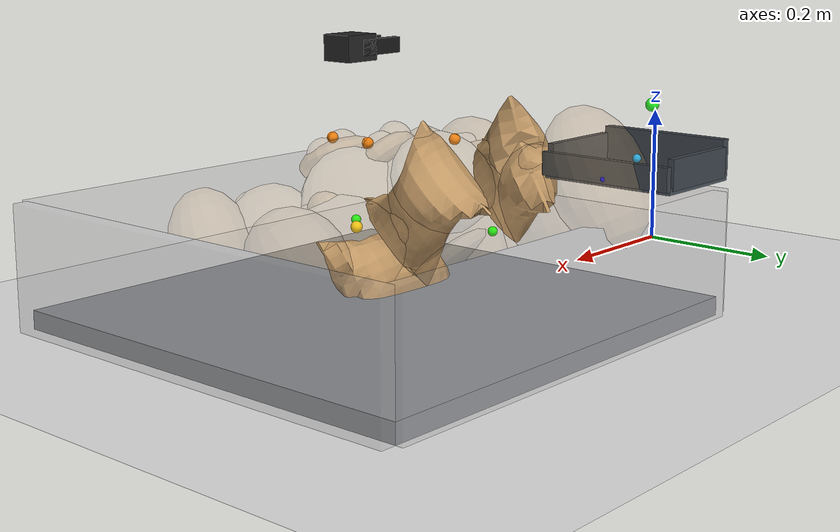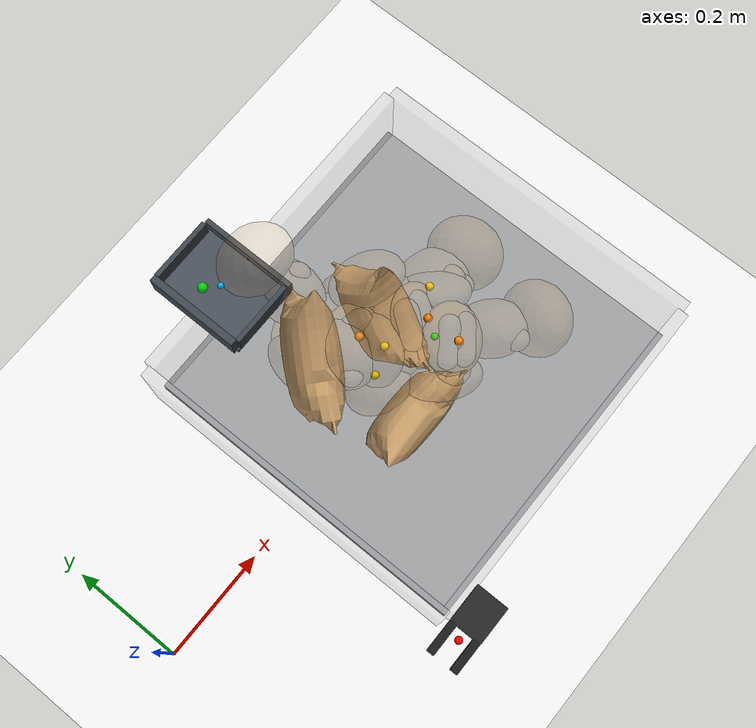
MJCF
<mujoco model="neighbor_contact_wedge_seed10">
  <compiler angle="radian" coordinate="local" inertiafromgeom="true" meshdir="D:/Michael/2025/01.Research/01.Parceldetection/16.Pybullet/bullet3-master (1)/bullet3-master/examples/pybullet/examples/DeformableTest/Sackcodex2/object"/>
  <option timestep="0.002" gravity="0 0 -9.81" integrator="implicitfast" iterations="100" tolerance="1e-8"/>
  <size memory="768M" nconmax="12000"/>

  <visual>
    <global azimuth="128" elevation="-20" offwidth="1280" offheight="720"/>
    <headlight ambient="0.34 0.34 0.34" diffuse="0.78 0.78 0.78" specular="0.15 0.15 0.15"/>
    <rgba haze="0.11 0.13 0.18 1"/>
  </visual>

  <default>
    <geom condim="4" friction="1.15 0.03 0.01" margin="0.003" solimp="0.93 0.98 0.003" solref="0.012 1"/>
    <joint damping="1.2" armature="0.002"/>
    <position kp="2500" forcelimited="true" forcerange="-420 420"/>
    <motor ctrllimited="true"/>
  </default>

  <asset>
    <mesh name="sack_0_visual_mesh" file="sack6Apply.obj" scale="0.0706 0.0706 0.0726"/>
    <mesh name="sack_1_visual_mesh" file="sack3.obj" scale="0.0718 0.0718 0.0754"/>
    <mesh name="sack_2_visual_mesh" file="sack3.obj" scale="0.0770 0.0770 0.0807"/>
  </asset>

  <worldbody>
    <light name="key" pos="0.85 0.15 1.8" dir="-0.2 -0.1 -1" directional="true"/>
    <geom name="floor" type="plane" size="2 2 0.1" rgba="0.93 0.93 0.93 1"/>
    <geom name="work_pad" type="box" pos="0.62 0 0.012" size="0.30 0.30 0.012" rgba="0.60 0.61 0.62 1" friction="1.4 0.05 0.01"/>
    <geom name="corral_front" type="box" pos="0.93 0.00 0.08" size="0.010 0.30 0.08" rgba="0.55 0.55 0.58 0.22" friction="1.0 0.03 0.01"/>
    <geom name="corral_back" type="box" pos="0.31 0.00 0.08" size="0.010 0.30 0.08" rgba="0.55 0.55 0.58 0.18" friction="1.0 0.03 0.01"/>
    <geom name="corral_left" type="box" pos="0.62 0.30 0.08" size="0.30 0.010 0.08" rgba="0.55 0.55 0.58 0.14" friction="1.0 0.03 0.01"/>
    <geom name="corral_right" type="box" pos="0.62 -0.30 0.08" size="0.30 0.010 0.08" rgba="0.55 0.55 0.58 0.14" friction="1.0 0.03 0.01"/>
    <camera name="overview" pos="1.22 0.00 0.92" xyaxes="0 1 0 -0.46 0 0.88"/>

    <body name="gripper_mocap" mocap="true" pos="0.36 -0.33 0.30" quat="0.707107 0 -0.707107 0"/>
    <body name="scoop_mocap" mocap="true" pos="0.42 0.28 0.20" quat="1 0 0 0"/>

    <body name="gripper_ctrl_base" pos="0.36 -0.33 0.30">
      <inertial pos="0 0 0" mass="0.001" diaginertia="1e-6 1e-6 1e-6"/>
      <joint name="gripper_ctrl_x" type="slide" axis="1 0 0" limited="true" range="0.20 1.00"/>
      <body name="gripper_ctrl_y_body">
        <inertial pos="0 0 0" mass="0.001" diaginertia="1e-6 1e-6 1e-6"/>
        <joint name="gripper_ctrl_y" type="slide" axis="0 1 0" limited="true" range="-0.60 0.60"/>
        <body name="gripper_ctrl_z_body">
          <inertial pos="0 0 0" mass="0.001" diaginertia="1e-6 1e-6 1e-6"/>
          <joint name="gripper_ctrl_z" type="slide" axis="0 0 1" limited="true" range="0.04 0.70"/>
          <body name="gripper_ctrl_yaw_body">
            <inertial pos="0 0 0" mass="0.001" diaginertia="1e-6 1e-6 1e-6"/>
            <joint name="gripper_ctrl_yaw" type="hinge" axis="0 0 1" limited="true" range="-3.1416 3.1416"/>
            <body name="gripper_ctrl_pitch_body">
              <inertial pos="0 0 0" mass="0.001" diaginertia="1e-6 1e-6 1e-6"/>
              <joint name="gripper_ctrl_pitch" type="hinge" axis="0 1 0" limited="true" range="-3.1416 3.1416"/>
              <body name="gripper_ctrl_roll_body">
                <inertial pos="0 0 0" mass="0.001" diaginertia="1e-6 1e-6 1e-6"/>
                <joint name="gripper_ctrl_roll" type="hinge" axis="1 0 0" limited="true" range="-3.1416 3.1416"/>
              </body>
            </body>
          </body>
        </body>
      </body>
    </body>

    <body name="scoop_ctrl_base" pos="0.42 0.28 0.20">
      <inertial pos="0 0 0" mass="0.001" diaginertia="1e-6 1e-6 1e-6"/>
      <joint name="scoop_ctrl_x" type="slide" axis="1 0 0" limited="true" range="0.20 1.00"/>
      <body name="scoop_ctrl_y_body">
        <inertial pos="0 0 0" mass="0.001" diaginertia="1e-6 1e-6 1e-6"/>
        <joint name="scoop_ctrl_y" type="slide" axis="0 1 0" limited="true" range="-0.60 0.60"/>
        <body name="scoop_ctrl_z_body">
          <inertial pos="0 0 0" mass="0.001" diaginertia="1e-6 1e-6 1e-6"/>
          <joint name="scoop_ctrl_z" type="slide" axis="0 0 1" limited="true" range="0.04 0.70"/>
          <body name="scoop_ctrl_yaw_body">
            <inertial pos="0 0 0" mass="0.001" diaginertia="1e-6 1e-6 1e-6"/>
            <joint name="scoop_ctrl_yaw" type="hinge" axis="0 0 1" limited="true" range="-3.1416 3.1416"/>
            <body name="scoop_ctrl_pitch_body">
              <inertial pos="0 0 0" mass="0.001" diaginertia="1e-6 1e-6 1e-6"/>
              <joint name="scoop_ctrl_pitch" type="hinge" axis="0 1 0" limited="true" range="-3.1416 3.1416"/>
              <body name="scoop_ctrl_roll_body">
                <inertial pos="0 0 0" mass="0.001" diaginertia="1e-6 1e-6 1e-6"/>
                <joint name="scoop_ctrl_roll" type="hinge" axis="1 0 0" limited="true" range="-3.1416 3.1416"/>
              </body>
            </body>
          </body>
        </body>
      </body>
    </body>

    <body name="gripper_tool" pos="0.36 -0.33 0.30" quat="0.707107 0 -0.707107 0">
      <freejoint name="gripper_tool_free"/>
      <inertial pos="0 0 0.04" mass="0.08" diaginertia="0.0002 0.0002 0.0002"/>
      <geom name="gripper_palm" type="box" pos="0 0 0.030" size="0.020 0.026 0.030" rgba="0.14 0.14 0.14 1"/>
      <body name="left_finger_body" pos="0 0 0.072">
        <joint name="left_finger_slide" type="slide" axis="0 1 0" limited="true" range="0.010 0.040" damping="12"/>
        <geom name="left_finger_geom" type="box" pos="0 0.020 0" size="0.012 0.006 0.040" rgba="0.10 0.10 0.10 1" friction="2.2 0.05 0.01"/>
      </body>
      <body name="right_finger_body" pos="0 0 0.072">
        <joint name="right_finger_slide" type="slide" axis="0 -1 0" limited="true" range="0.010 0.040" damping="12"/>
        <geom name="right_finger_geom" type="box" pos="0 -0.020 0" size="0.012 0.006 0.040" rgba="0.10 0.10 0.10 1" friction="2.2 0.05 0.01"/>
      </body>
      <site name="gripper_pinch_site" pos="0 0 0.074" size="0.006" rgba="1 0 0 1"/>
    </body>

    <body name="scoop_tool" pos="0.42 0.28 0.20" quat="1 0 0 0">
      <freejoint name="scoop_tool_free"/>
      <inertial pos="0 0 0.02" mass="0.10" diaginertia="0.0003 0.0003 0.0003"/>
      <geom name="scoop_plate" type="box" pos="0.062 0 0" size="0.062 0.085 0.004" rgba="0.28 0.31 0.35 1" friction="1.7 0.05 0.01"/>
      <geom name="scoop_lip" type="box" pos="0.126 0 0.014" size="0.004 0.085 0.014" rgba="0.24 0.27 0.30 1" friction="1.7 0.05 0.01"/>
      <geom name="scoop_left_rail" type="box" pos="0.062 0.082 0.018" size="0.056 0.004 0.018" rgba="0.24 0.27 0.30 1"/>
      <geom name="scoop_right_rail" type="box" pos="0.062 -0.082 0.018" size="0.056 0.004 0.018" rgba="0.24 0.27 0.30 1"/>
      <geom name="scoop_backstop" type="box" pos="0.000 0 0.022" size="0.006 0.082 0.022" rgba="0.24 0.27 0.30 1"/>
      <site name="scoop_tip_site" pos="0.126 0 0.005" size="0.005" rgba="0 0 1 1"/>
      <site name="scoop_center_site" pos="0.060 0 0.020" size="0.005" rgba="0 0.7 1 1"/>
      <site name="score_overlay_site" pos="0.030 0 0.080" size="0.008" rgba="0 1 0 0.8"/>
    </body>

    <body name="sack_0" pos="0.6150 0.0685 0.1554" euler="0.7273 0.1212 -1.8466">
      <freejoint name="sack_0_free"/>

      <geom name="sack_0_visual" type="mesh" mesh="sack_0_visual_mesh" rgba="0.760 0.600 0.400 0.92" contype="0" conaffinity="0"/>
      <site name="sack_0_center_site" pos="0 0 0.000" size="0.006" rgba="0 1 0 1"/>
      <site name="sack_0_top_site" pos="0.0014 0.0116 0.1029" size="0.007" rgba="1 0.5 0 1"/>
      <site name="sack_0_side_site" pos="0.0036 0.0926 0.018" size="0.007" rgba="1 0.8 0 1"/>

      <geom name="sack_0_core_geom" type="ellipsoid" pos="0 0 0.0058" size="0.0431 0.0340 0.0741" mass="0.9544" rgba="0.760 0.600 0.400 0.12" friction="1.0 0.03 0.01"/>
      <geom name="sack_0_core_front" type="capsule" fromto="-0.0204 0 -0.0180 0.0536 0 0.0580" size="0.0286" mass="0.2272" rgba="0.760 0.600 0.400 0.10"/>
      <geom name="sack_0_core_left" type="capsule" fromto="-0.016 0.0645 -0.012 0.020 0.1243 0.054" size="0.0209" mass="0.4090" rgba="0.760 0.600 0.400 0.10"/>
      <geom name="sack_0_core_right" type="capsule" fromto="-0.016 -0.0645 -0.012 0.020 -0.1243 0.054" size="0.0187" mass="0.4090" rgba="0.760 0.600 0.400 0.10"/>

      <!-- 자루의 외형은 둥근 shell lobe로 보이게 하고, contact proxy는 반투명하게 숨긴다. -->
      <geom name="sack_0_shell_main_visual" type="ellipsoid" pos="0.0018 0.0093 -0.0038" size="0.0713 0.0634 0.0784" rgba="0.760 0.600 0.400 0.16" contype="0" conaffinity="0"/>
      <geom name="sack_0_shell_left_visual" type="ellipsoid" pos="0.0040 0.1128 0.0020" size="0.0485 0.0671 0.0643" rgba="0.760 0.600 0.400 0.14" contype="0" conaffinity="0"/>
      <geom name="sack_0_shell_right_visual" type="ellipsoid" pos="0.0040 -0.0280 0.0000" size="0.0456 0.0372 0.0627" rgba="0.760 0.600 0.400 0.12" contype="0" conaffinity="0"/>
      <geom name="sack_0_top_left_crown_visual" type="capsule" fromto="-0.0226 0.0161 0.0823 0.0226 0.0080 0.0863" size="0.0207" rgba="0.760 0.600 0.400 0.14" contype="0" conaffinity="0"/>
      <geom name="sack_0_top_right_crown_visual" type="capsule" fromto="-0.0226 -0.0080 0.0863 0.0226 -0.0161 0.0823" size="0.0207" rgba="0.760 0.600 0.400 0.14" contype="0" conaffinity="0"/>

      <body name="sack_0_bottom_support_proxy_body" pos="0.0006 0.0126 -0.0756">
        <joint name="sack_0_bottom_x" type="slide" axis="1 0 0" limited="true" range="-0.012 0.012" damping="18" stiffness="447.8"/>
        <joint name="sack_0_bottom_y" type="slide" axis="0 1 0" limited="true" range="-0.012 0.012" damping="18" stiffness="447.8"/>
        <joint name="sack_0_bottom_z" type="slide" axis="0 0 1" limited="true" range="-0.008 0.020" damping="24" stiffness="551.7"/>
        <geom name="sack_0_bottom_support_proxy" type="ellipsoid" size="0.0723 0.0647 0.0144" mass="0.1818" rgba="0.760 0.600 0.400 0.10" friction="1.55 0.05 0.01"/>
        <geom name="sack_0_bottom_deform_visual" type="ellipsoid" size="0.0770 0.0707 0.0187" rgba="0.760 0.600 0.400 0.22" contype="0" conaffinity="0"/>
      </body>

      <body name="sack_0_top_grasp_proxy_body" pos="0.0036 0.0125 0.0749">
        <joint name="sack_0_top_x" type="slide" axis="1 0 0" limited="true" range="-0.018 0.018" damping="12" stiffness="171.9"/>
        <joint name="sack_0_top_y" type="slide" axis="0 1 0" limited="true" range="-0.018 0.018" damping="12" stiffness="171.9"/>
        <joint name="sack_0_top_z" type="slide" axis="0 0 1" limited="true" range="-0.040 0.010" damping="14" stiffness="125.9"/>
        <geom name="sack_0_top_grasp_proxy" type="ellipsoid" size="0.0566 0.0447 0.0158" mass="0.1363" rgba="0.760 0.600 0.400 0.10" friction="2.2 0.05 0.01"/>
        <geom name="sack_0_top_deform_visual" type="ellipsoid" size="0.0589 0.0482 0.0206" rgba="0.760 0.600 0.400 0.36" contype="0" conaffinity="0"/>
        <geom name="sack_0_top_fold_left_visual" type="capsule" fromto="-0.0272 0.0125 0.000 0.0057 0.0036 0.0125" size="0.0149" rgba="0.760 0.600 0.400 0.26" contype="0" conaffinity="0"/>
        <geom name="sack_0_top_fold_right_visual" type="capsule" fromto="-0.0068 -0.0036 0.0125 0.0272 -0.0125 0.000" size="0.0149" rgba="0.760 0.600 0.400 0.26" contype="0" conaffinity="0"/>
      </body>

      <body name="sack_0_left_side_proxy_body" pos="0.0006 0.1875 0.010">
        <joint name="sack_0_left_side_slide" type="slide" axis="0 -1 0" limited="true" range="-0.028 0.016" damping="16" stiffness="221.3"/>
        <geom name="sack_0_left_side_proxy" type="ellipsoid" size="0.0626 0.0538 0.0676" mass="0.1363" rgba="0.760 0.600 0.400 0.08" friction="1.25 0.04 0.01"/>
        <geom name="sack_0_left_side_deform_visual" type="ellipsoid" size="0.0645 0.0581 0.0689" rgba="0.760 0.600 0.400 0.24" contype="0" conaffinity="0"/>
      </body>

      <body name="sack_0_right_side_proxy_body" pos="0.0006 -0.1027 0.010">
        <joint name="sack_0_right_side_slide" type="slide" axis="0 1 0" limited="true" range="-0.028 0.016" damping="16" stiffness="205.3"/>
        <geom name="sack_0_right_side_proxy" type="ellipsoid" size="0.0601 0.0420 0.0662" mass="0.1363" rgba="0.760 0.600 0.400 0.08" friction="1.25 0.04 0.01"/>
        <geom name="sack_0_right_side_deform_visual" type="ellipsoid" size="0.0620 0.0463 0.0676" rgba="0.760 0.600 0.400 0.24" contype="0" conaffinity="0"/>
      </body>

      <body name="sack_0_front_proxy_body" pos="0.0702 0.0030 0.000">
        <joint name="sack_0_front_slide" type="slide" axis="-1 0 0" limited="true" range="-0.022 0.012" damping="15" stiffness="213.9"/>
        <geom name="sack_0_front_support_proxy" type="ellipsoid" size="0.0419 0.0627 0.0636" mass="0.1136" rgba="0.760 0.600 0.400 0.08" friction="1.20 0.04 0.01"/>
        <geom name="sack_0_front_deform_visual" type="ellipsoid" size="0.0427 0.0639 0.0648" rgba="0.760 0.600 0.400 0.20" contype="0" conaffinity="0"/>
      </body>

      <body name="sack_0_back_proxy_body" pos="-0.0652 0.0030 0.000">
        <joint name="sack_0_back_slide" type="slide" axis="1 0 0" limited="true" range="-0.022 0.012" damping="15" stiffness="197.9"/>
        <geom name="sack_0_back_support_proxy" type="ellipsoid" size="0.0385 0.0627 0.0636" mass="0.1136" rgba="0.760 0.600 0.400 0.08" friction="1.20 0.04 0.01"/>
        <geom name="sack_0_back_deform_visual" type="ellipsoid" size="0.0402 0.0639 0.0648" rgba="0.760 0.600 0.400 0.20" contype="0" conaffinity="0"/>
      </body>

      <body name="sack_0_shape_proxy_body" pos="0.0022 0.1143 0.0389">
        <joint name="sack_0_bulge_y" type="slide" axis="0 1 0" limited="true" range="-0.020 0.020" damping="8" stiffness="108.1"/>
        <joint name="sack_0_bulge_z" type="slide" axis="0 0 1" limited="true" range="-0.014 0.028" damping="8" stiffness="106.1"/>
        <geom name="sack_0_shape_proxy" type="ellipsoid" size="0.0251 0.0222 0.0318" mass="0.0909" rgba="0.760 0.600 0.400 0.10"/>
        <geom name="sack_0_shape_deform_visual" type="ellipsoid" size="0.0294 0.0266 0.0366" rgba="0.760 0.600 0.400 0.32" contype="0" conaffinity="0"/>
      </body>
    </body>

    <body name="sack_1" pos="0.5434 0.1164 0.1197" euler="0.4513 0.0474 -0.0213">
      <freejoint name="sack_1_free"/>

      <geom name="sack_1_visual" type="mesh" mesh="sack_1_visual_mesh" rgba="0.760 0.600 0.400 0.92" contype="0" conaffinity="0"/>
      <site name="sack_1_center_site" pos="0 0 0.000" size="0.006" rgba="0 1 0 1"/>
      <site name="sack_1_top_site" pos="0.0006 -0.0026 0.1221" size="0.007" rgba="1 0.5 0 1"/>
      <site name="sack_1_side_site" pos="0.0014 -0.0926 0.018" size="0.007" rgba="1 0.8 0 1"/>

      <geom name="sack_1_core_geom" type="ellipsoid" pos="0 0 0.0059" size="0.0437 0.0348 0.0755" mass="0.9137" rgba="0.760 0.600 0.400 0.12" friction="1.0 0.03 0.01"/>
      <geom name="sack_1_core_front" type="capsule" fromto="-0.0226 0 -0.0180 0.0514 0 0.0580" size="0.0293" mass="0.2175" rgba="0.760 0.600 0.400 0.10"/>
      <geom name="sack_1_core_left" type="capsule" fromto="-0.016 0.0619 -0.012 0.020 0.1183 0.054" size="0.0209" mass="0.3916" rgba="0.760 0.600 0.400 0.10"/>
      <geom name="sack_1_core_right" type="capsule" fromto="-0.016 -0.0619 -0.012 0.020 -0.1183 0.054" size="0.0187" mass="0.3916" rgba="0.760 0.600 0.400 0.10"/>

      <!-- 자루의 외형은 둥근 shell lobe로 보이게 하고, contact proxy는 반투명하게 숨긴다. -->
      <geom name="sack_1_shell_main_visual" type="ellipsoid" pos="0.0007 0.0057 -0.0034" size="0.0720 0.0654 0.0933" rgba="0.760 0.600 0.400 0.16" contype="0" conaffinity="0"/>
      <geom name="sack_1_shell_left_visual" type="ellipsoid" pos="0.0040 0.0998 0.0020" size="0.0490 0.0630 0.0765" rgba="0.760 0.600 0.400 0.14" contype="0" conaffinity="0"/>
      <geom name="sack_1_shell_right_visual" type="ellipsoid" pos="0.0040 -0.0324 0.0000" size="0.0461 0.0353 0.0747" rgba="0.760 0.600 0.400 0.12" contype="0" conaffinity="0"/>
      <geom name="sack_1_top_left_crown_visual" type="capsule" fromto="-0.0230 0.0169 0.1019 0.0230 0.0085 0.1059" size="0.0207" rgba="0.760 0.600 0.400 0.14" contype="0" conaffinity="0"/>
      <geom name="sack_1_top_right_crown_visual" type="capsule" fromto="-0.0230 -0.0085 0.1059 0.0230 -0.0169 0.1019" size="0.0207" rgba="0.760 0.600 0.400 0.14" contype="0" conaffinity="0"/>

      <body name="sack_1_bottom_support_proxy_body" pos="0.0003 -0.0015 -0.0930">
        <joint name="sack_1_bottom_x" type="slide" axis="1 0 0" limited="true" range="-0.012 0.012" damping="18" stiffness="470.2"/>
        <joint name="sack_1_bottom_y" type="slide" axis="0 1 0" limited="true" range="-0.012 0.012" damping="18" stiffness="470.2"/>
        <joint name="sack_1_bottom_z" type="slide" axis="0 0 1" limited="true" range="-0.008 0.020" damping="24" stiffness="579.1"/>
        <geom name="sack_1_bottom_support_proxy" type="ellipsoid" size="0.0730 0.0670 0.0137" mass="0.1740" rgba="0.760 0.600 0.400 0.10" friction="1.55 0.05 0.01"/>
        <geom name="sack_1_bottom_deform_visual" type="ellipsoid" size="0.0778 0.0730 0.0178" rgba="0.760 0.600 0.400 0.22" contype="0" conaffinity="0"/>
      </body>

      <body name="sack_1_top_grasp_proxy_body" pos="0.0014 -0.0020 0.0941">
        <joint name="sack_1_top_x" type="slide" axis="1 0 0" limited="true" range="-0.018 0.018" damping="12" stiffness="180.6"/>
        <joint name="sack_1_top_y" type="slide" axis="0 1 0" limited="true" range="-0.018 0.018" damping="12" stiffness="180.6"/>
        <joint name="sack_1_top_z" type="slide" axis="0 0 1" limited="true" range="-0.040 0.010" damping="14" stiffness="133.4"/>
        <geom name="sack_1_top_grasp_proxy" type="ellipsoid" size="0.0574 0.0470 0.0154" mass="0.1305" rgba="0.760 0.600 0.400 0.10" friction="2.2 0.05 0.01"/>
        <geom name="sack_1_top_deform_visual" type="ellipsoid" size="0.0597 0.0507 0.0202" rgba="0.760 0.600 0.400 0.36" contype="0" conaffinity="0"/>
        <geom name="sack_1_top_fold_left_visual" type="capsule" fromto="-0.0275 0.0132 0.000 0.0057 0.0038 0.0123" size="0.0149" rgba="0.760 0.600 0.400 0.26" contype="0" conaffinity="0"/>
        <geom name="sack_1_top_fold_right_visual" type="capsule" fromto="-0.0069 -0.0038 0.0123 0.0275 -0.0132 0.000" size="0.0149" rgba="0.760 0.600 0.400 0.26" contype="0" conaffinity="0"/>
      </body>

      <body name="sack_1_left_side_proxy_body" pos="0.0002 0.1768 0.010">
        <joint name="sack_1_left_side_slide" type="slide" axis="0 -1 0" limited="true" range="-0.028 0.016" damping="16" stiffness="236.3"/>
        <geom name="sack_1_left_side_proxy" type="ellipsoid" size="0.0634 0.0504 0.0850" mass="0.1305" rgba="0.760 0.600 0.400 0.08" friction="1.25 0.04 0.01"/>
        <geom name="sack_1_left_side_deform_visual" type="ellipsoid" size="0.0653 0.0545 0.0867" rgba="0.760 0.600 0.400 0.24" contype="0" conaffinity="0"/>
      </body>

      <body name="sack_1_right_side_proxy_body" pos="0.0002 -0.1094 0.010">
        <joint name="sack_1_right_side_slide" type="slide" axis="0 1 0" limited="true" range="-0.028 0.016" damping="16" stiffness="219.1"/>
        <geom name="sack_1_right_side_proxy" type="ellipsoid" size="0.0609 0.0393 0.0833" mass="0.1305" rgba="0.760 0.600 0.400 0.08" friction="1.25 0.04 0.01"/>
        <geom name="sack_1_right_side_deform_visual" type="ellipsoid" size="0.0628 0.0434 0.0850" rgba="0.760 0.600 0.400 0.24" contype="0" conaffinity="0"/>
      </body>

      <body name="sack_1_front_proxy_body" pos="0.0688 0.0018 0.000">
        <joint name="sack_1_front_slide" type="slide" axis="-1 0 0" limited="true" range="-0.022 0.012" damping="15" stiffness="225.1"/>
        <geom name="sack_1_front_support_proxy" type="ellipsoid" size="0.0396 0.0650 0.0810" mass="0.1088" rgba="0.760 0.600 0.400 0.08" friction="1.20 0.04 0.01"/>
        <geom name="sack_1_front_deform_visual" type="ellipsoid" size="0.0404 0.0663 0.0827" rgba="0.760 0.600 0.400 0.20" contype="0" conaffinity="0"/>
      </body>

      <body name="sack_1_back_proxy_body" pos="-0.0668 0.0018 0.000">
        <joint name="sack_1_back_slide" type="slide" axis="1 0 0" limited="true" range="-0.022 0.012" damping="15" stiffness="207.9"/>
        <geom name="sack_1_back_support_proxy" type="ellipsoid" size="0.0364 0.0650 0.0810" mass="0.1088" rgba="0.760 0.600 0.400 0.08" friction="1.20 0.04 0.01"/>
        <geom name="sack_1_back_deform_visual" type="ellipsoid" size="0.0380 0.0663 0.0827" rgba="0.760 0.600 0.400 0.20" contype="0" conaffinity="0"/>
      </body>

      <body name="sack_1_shape_proxy_body" pos="0.0008 -0.0948 0.0324">
        <joint name="sack_1_bulge_y" type="slide" axis="0 1 0" limited="true" range="-0.020 0.020" damping="8" stiffness="93.2"/>
        <joint name="sack_1_bulge_z" type="slide" axis="0 0 1" limited="true" range="-0.014 0.028" damping="8" stiffness="94.9"/>
        <geom name="sack_1_shape_proxy" type="ellipsoid" size="0.0250 0.0220 0.0314" mass="0.0870" rgba="0.760 0.600 0.400 0.10"/>
        <geom name="sack_1_shape_deform_visual" type="ellipsoid" size="0.0293 0.0264 0.0362" rgba="0.760 0.600 0.400 0.32" contype="0" conaffinity="0"/>
      </body>
    </body>

    <body name="sack_2" pos="0.6463 -0.0148 0.1328" euler="0.4667 -0.0555 -2.2399">
      <freejoint name="sack_2_free"/>

      <geom name="sack_2_visual" type="mesh" mesh="sack_2_visual_mesh" rgba="0.760 0.600 0.400 0.92" contype="0" conaffinity="0"/>
      <site name="sack_2_center_site" pos="0 0 0.000" size="0.006" rgba="0 1 0 1"/>
      <site name="sack_2_top_site" pos="-0.0007 -0.0024 0.1064" size="0.007" rgba="1 0.5 0 1"/>
      <site name="sack_2_side_site" pos="-0.0016 -0.0918 0.018" size="0.007" rgba="1 0.8 0 1"/>

      <geom name="sack_2_core_geom" type="ellipsoid" pos="0 0 0.0058" size="0.0436 0.0347 0.0754" mass="0.8660" rgba="0.760 0.600 0.400 0.12" friction="1.0 0.03 0.01"/>
      <geom name="sack_2_core_front" type="capsule" fromto="-0.0256 0 -0.0180 0.0484 0 0.0580" size="0.0293" mass="0.2062" rgba="0.760 0.600 0.400 0.10"/>
      <geom name="sack_2_core_left" type="capsule" fromto="-0.016 0.0614 -0.012 0.020 0.1171 0.054" size="0.0208" mass="0.3711" rgba="0.760 0.600 0.400 0.10"/>
      <geom name="sack_2_core_right" type="capsule" fromto="-0.016 -0.0614 -0.012 0.020 -0.1171 0.054" size="0.0187" mass="0.3711" rgba="0.760 0.600 0.400 0.10"/>

      <!-- 자루의 외형은 둥근 shell lobe로 보이게 하고, contact proxy는 반투명하게 숨긴다. -->
      <geom name="sack_2_shell_main_visual" type="ellipsoid" pos="-0.0008 0.0059 -0.0057" size="0.0719 0.0651 0.0883" rgba="0.760 0.600 0.400 0.16" contype="0" conaffinity="0"/>
      <geom name="sack_2_shell_left_visual" type="ellipsoid" pos="0.0040 0.0990 0.0020" size="0.0489 0.0621 0.0724" rgba="0.760 0.600 0.400 0.14" contype="0" conaffinity="0"/>
      <geom name="sack_2_shell_right_visual" type="ellipsoid" pos="0.0040 -0.0315 0.0000" size="0.0460 0.0350 0.0707" rgba="0.760 0.600 0.400 0.12" contype="0" conaffinity="0"/>
      <geom name="sack_2_top_left_crown_visual" type="capsule" fromto="-0.0229 0.0168 0.0843 0.0229 0.0084 0.0883" size="0.0207" rgba="0.760 0.600 0.400 0.14" contype="0" conaffinity="0"/>
      <geom name="sack_2_top_right_crown_visual" type="capsule" fromto="-0.0229 -0.0084 0.0883 0.0229 -0.0168 0.0843" size="0.0207" rgba="0.760 0.600 0.400 0.14" contype="0" conaffinity="0"/>

      <body name="sack_2_bottom_support_proxy_body" pos="-0.0003 0.0077 -0.0872">
        <joint name="sack_2_bottom_x" type="slide" axis="1 0 0" limited="true" range="-0.012 0.012" damping="18" stiffness="467.7"/>
        <joint name="sack_2_bottom_y" type="slide" axis="0 1 0" limited="true" range="-0.012 0.012" damping="18" stiffness="467.7"/>
        <joint name="sack_2_bottom_z" type="slide" axis="0 0 1" limited="true" range="-0.008 0.020" damping="24" stiffness="576.1"/>
        <geom name="sack_2_bottom_support_proxy" type="ellipsoid" size="0.0730 0.0667 0.0137" mass="0.1650" rgba="0.760 0.600 0.400 0.10" friction="1.55 0.05 0.01"/>
        <geom name="sack_2_bottom_deform_visual" type="ellipsoid" size="0.0777 0.0727 0.0179" rgba="0.760 0.600 0.400 0.22" contype="0" conaffinity="0"/>
      </body>

      <body name="sack_2_top_grasp_proxy_body" pos="-0.0016 -0.0018 0.0784">
        <joint name="sack_2_top_x" type="slide" axis="1 0 0" limited="true" range="-0.018 0.018" damping="12" stiffness="179.7"/>
        <joint name="sack_2_top_y" type="slide" axis="0 1 0" limited="true" range="-0.018 0.018" damping="12" stiffness="179.7"/>
        <joint name="sack_2_top_z" type="slide" axis="0 0 1" limited="true" range="-0.040 0.010" damping="14" stiffness="132.6"/>
        <geom name="sack_2_top_grasp_proxy" type="ellipsoid" size="0.0573 0.0467 0.0170" mass="0.1237" rgba="0.760 0.600 0.400 0.10" friction="2.2 0.05 0.01"/>
        <geom name="sack_2_top_deform_visual" type="ellipsoid" size="0.0596 0.0504 0.0221" rgba="0.760 0.600 0.400 0.36" contype="0" conaffinity="0"/>
        <geom name="sack_2_top_fold_left_visual" type="capsule" fromto="-0.0275 0.0131 0.000 0.0057 0.0037 0.0133" size="0.0149" rgba="0.760 0.600 0.400 0.26" contype="0" conaffinity="0"/>
        <geom name="sack_2_top_fold_right_visual" type="capsule" fromto="-0.0069 -0.0037 0.0133 0.0275 -0.0131 0.000" size="0.0149" rgba="0.760 0.600 0.400 0.26" contype="0" conaffinity="0"/>
      </body>

      <body name="sack_2_left_side_proxy_body" pos="-0.0003 0.1756 0.010">
        <joint name="sack_2_left_side_slide" type="slide" axis="0 -1 0" limited="true" range="-0.028 0.016" damping="16" stiffness="234.4"/>
        <geom name="sack_2_left_side_proxy" type="ellipsoid" size="0.0633 0.0497 0.0792" mass="0.1237" rgba="0.760 0.600 0.400 0.08" friction="1.25 0.04 0.01"/>
        <geom name="sack_2_left_side_deform_visual" type="ellipsoid" size="0.0652 0.0537 0.0808" rgba="0.760 0.600 0.400 0.24" contype="0" conaffinity="0"/>
      </body>

      <body name="sack_2_right_side_proxy_body" pos="-0.0003 -0.1081 0.010">
        <joint name="sack_2_right_side_slide" type="slide" axis="0 1 0" limited="true" range="-0.028 0.016" damping="16" stiffness="217.3"/>
        <geom name="sack_2_right_side_proxy" type="ellipsoid" size="0.0608 0.0388 0.0776" mass="0.1237" rgba="0.760 0.600 0.400 0.08" friction="1.25 0.04 0.01"/>
        <geom name="sack_2_right_side_deform_visual" type="ellipsoid" size="0.0627 0.0428 0.0792" rgba="0.760 0.600 0.400 0.24" contype="0" conaffinity="0"/>
      </body>

      <body name="sack_2_front_proxy_body" pos="0.0657 0.0019 0.000">
        <joint name="sack_2_front_slide" type="slide" axis="-1 0 0" limited="true" range="-0.022 0.012" damping="15" stiffness="223.8"/>
        <geom name="sack_2_front_support_proxy" type="ellipsoid" size="0.0392 0.0647 0.0752" mass="0.1031" rgba="0.760 0.600 0.400 0.08" friction="1.20 0.04 0.01"/>
        <geom name="sack_2_front_deform_visual" type="ellipsoid" size="0.0399 0.0660 0.0767" rgba="0.760 0.600 0.400 0.20" contype="0" conaffinity="0"/>
      </body>

      <body name="sack_2_back_proxy_body" pos="-0.0680 0.0019 0.000">
        <joint name="sack_2_back_slide" type="slide" axis="1 0 0" limited="true" range="-0.022 0.012" damping="15" stiffness="206.8"/>
        <geom name="sack_2_back_support_proxy" type="ellipsoid" size="0.0360 0.0647 0.0752" mass="0.1031" rgba="0.760 0.600 0.400 0.08" friction="1.20 0.04 0.01"/>
        <geom name="sack_2_back_deform_visual" type="ellipsoid" size="0.0376 0.0660 0.0767" rgba="0.760 0.600 0.400 0.20" contype="0" conaffinity="0"/>
      </body>

      <body name="sack_2_shape_proxy_body" pos="-0.0010 -0.0931 0.0331">
        <joint name="sack_2_bulge_y" type="slide" axis="0 1 0" limited="true" range="-0.020 0.020" damping="8" stiffness="94.9"/>
        <joint name="sack_2_bulge_z" type="slide" axis="0 0 1" limited="true" range="-0.014 0.028" damping="8" stiffness="96.2"/>
        <geom name="sack_2_shape_proxy" type="ellipsoid" size="0.0250 0.0220 0.0330" mass="0.0825" rgba="0.760 0.600 0.400 0.10"/>
        <geom name="sack_2_shape_deform_visual" type="ellipsoid" size="0.0293 0.0263 0.0381" rgba="0.760 0.600 0.400 0.32" contype="0" conaffinity="0"/>
      </body>
    </body>
  </worldbody>

  <equality>
    <weld name="gripper_follow" body1="gripper_mocap" body2="gripper_tool" torquescale="400" solref="0.002 1" solimp="0.99 0.999 0.0001"/>
    <weld name="scoop_follow" body1="scoop_mocap" body2="scoop_tool" torquescale="500" solref="0.002 1" solimp="0.99 0.999 0.0001"/>
  </equality>

  <actuator>
    <position name="gripper_ctrl_x_act" joint="gripper_ctrl_x" ctrlrange="0.20 1.00" kp="3500" forcerange="-300 300"/>
    <position name="gripper_ctrl_y_act" joint="gripper_ctrl_y" ctrlrange="-0.60 0.60" kp="3500" forcerange="-300 300"/>
    <position name="gripper_ctrl_z_act" joint="gripper_ctrl_z" ctrlrange="0.04 0.70" kp="3500" forcerange="-300 300"/>
    <position name="gripper_ctrl_yaw_act" joint="gripper_ctrl_yaw" ctrlrange="-3.1416 3.1416" kp="1800" forcerange="-250 250"/>
    <position name="gripper_ctrl_pitch_act" joint="gripper_ctrl_pitch" ctrlrange="-3.1416 3.1416" kp="1800" forcerange="-250 250"/>
    <position name="gripper_ctrl_roll_act" joint="gripper_ctrl_roll" ctrlrange="-3.1416 3.1416" kp="1800" forcerange="-250 250"/>
    <position name="scoop_ctrl_x_act" joint="scoop_ctrl_x" ctrlrange="0.20 1.00" kp="3500" forcerange="-300 300"/>
    <position name="scoop_ctrl_y_act" joint="scoop_ctrl_y" ctrlrange="-0.60 0.60" kp="3500" forcerange="-300 300"/>
    <position name="scoop_ctrl_z_act" joint="scoop_ctrl_z" ctrlrange="0.04 0.70" kp="3500" forcerange="-300 300"/>
    <position name="scoop_ctrl_yaw_act" joint="scoop_ctrl_yaw" ctrlrange="-3.1416 3.1416" kp="1800" forcerange="-250 250"/>
    <position name="scoop_ctrl_pitch_act" joint="scoop_ctrl_pitch" ctrlrange="-3.1416 3.1416" kp="1800" forcerange="-250 250"/>
    <position name="scoop_ctrl_roll_act" joint="scoop_ctrl_roll" ctrlrange="-3.1416 3.1416" kp="1800" forcerange="-250 250"/>
    <position name="left_finger_act" joint="left_finger_slide" ctrlrange="0.010 0.040" kp="2800" forcerange="-220 220"/>
    <position name="right_finger_act" joint="right_finger_slide" ctrlrange="0.010 0.040" kp="2800" forcerange="-220 220"/>
  </actuator>

  <contact>
    <exclude body1="sack_0_top_grasp_proxy_body" body2="sack_0_left_side_proxy_body"/>
    <exclude body1="sack_0_top_grasp_proxy_body" body2="sack_0_right_side_proxy_body"/>
    <exclude body1="sack_1_top_grasp_proxy_body" body2="sack_1_left_side_proxy_body"/>
    <exclude body1="sack_1_top_grasp_proxy_body" body2="sack_1_right_side_proxy_body"/>
    <exclude body1="sack_2_top_grasp_proxy_body" body2="sack_2_left_side_proxy_body"/>
    <exclude body1="sack_2_top_grasp_proxy_body" body2="sack_2_right_side_proxy_body"/>
  </contact>
</mujoco>
